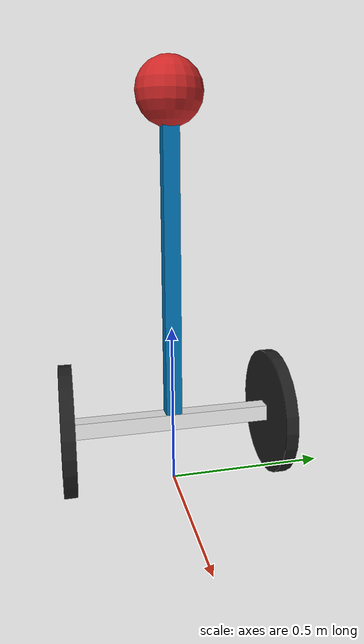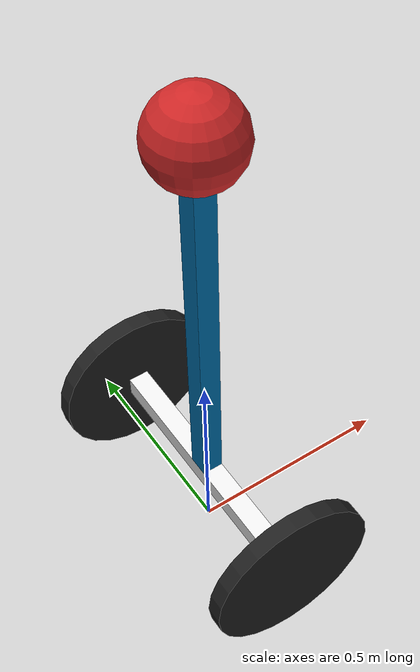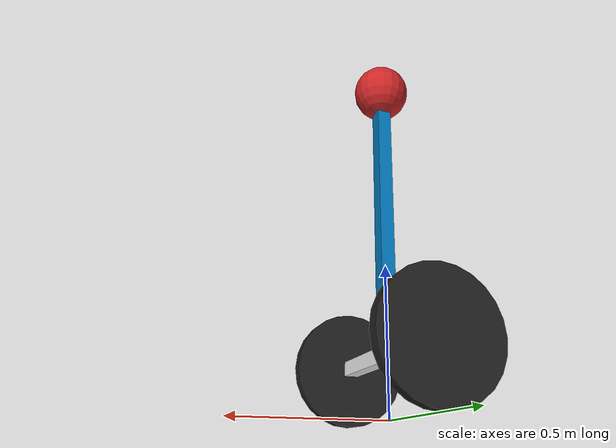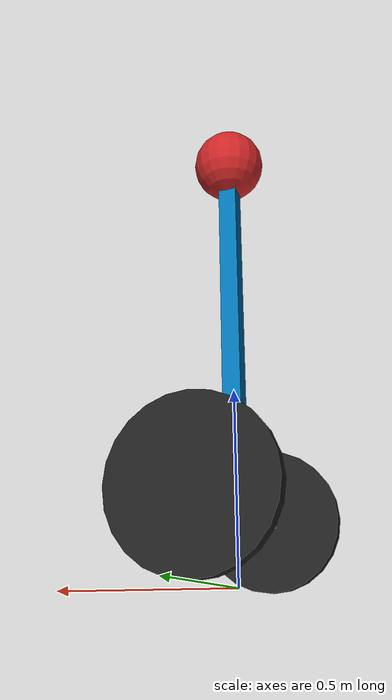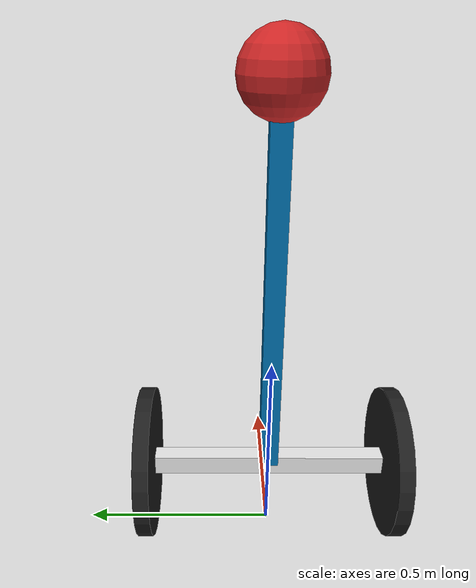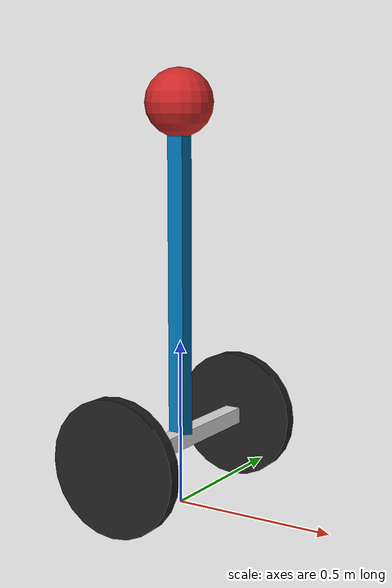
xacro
<?xml version="1.0"?>
<robot xmlns:xacro="http://www.ros.org/wiki/xacro" name="cart_pole">

<!-- pi -->
<xacro:include filename="$(find cart_pole)/urdf/robot.gazebo" />

<!-- Launch arguments which will be passed to xacro file when /start_simulation service is called -->
<xacro:arg name="mc" default="1.5"/>
<xacro:arg name="mp" default="0.5"/>
<xacro:arg name="l"  default="1.0"/>
<xacro:arg name="k1" default="-0.8935"/>
<xacro:arg name="k2" default="16.7650"/>
<xacro:arg name="k3"  default="-1.7750"/>
<xacro:arg name="k4" default="5.0945"/>

<xacro:property name="mc" value="${$(arg mc) - 0.5}" />
<xacro:property name="mp" value="${$(arg mp)}" />
<xacro:property name="l" value="${$(arg l)}" />

<!-- dummy_link -->
<link name="dummy_link" />

<!-- dummy_joint -->
<joint name="dummy_joint" type="fixed">
    <parent link="dummy_link" />
    <child link="base" />
</joint>

<!-- base link -->
<!-- cart or mass m_c in dynamic model, particle mass with no inertia -->
<link name="base">
    <visual>
        <origin xyz="0 0 0.2" />
        <geometry>
            <box size="0.05 0.618 0.05" />
        </geometry>
    </visual>
    <collision>
        <origin xyz="0 0 0.2" />
        <geometry>
            <box size="0.05 0.618 0.05" />
        </geometry>
    </collision>
    <inertial>
        <origin xyz="0 0 0.2" />
        <mass value="${mc}" />
        <inertia ixx="0.0" ixy="0.0" ixz="0.0" iyy="0.0" iyz="0.0" izz="0.0" />
    </inertial>
</link>

<!-- right_wheel -->
<!-- has I_w = izz inertia -->
<link name="right_wheel">
    <visual>
        <geometry>
            <cylinder radius="0.2" length="0.04" />
        </geometry>
    </visual>
    <collision>
        <geometry>
            <cylinder radius="0.2" length="0.04" />
        </geometry>
    </collision>
    <inertial>
        <mass value="0.25" />
        <inertia ixx="0.0006333" ixy="0.0" ixz="0.0" iyy="0.0006333" iyz="0.0" izz="0.00125" />
    </inertial>
</link>

<!-- right_wheel_joint -->
<!-- has d_1 damping ratio -->
<joint name="right_wheel_joint" type="continuous">
    <parent link="base" />
    <child link="right_wheel" />
    <origin xyz="0.0 -0.329 0.2" rpy="${pi/2} 0.0 0.0" />
    <axis xyz="0 0 1" />
    <limit effort="10.0" velocity="100.0" />
    <dynamics damping="0.01" />
</joint>

<!-- left_wheel -->
<!-- has I_w = izz inertia -->
<link name="left_wheel">
    <visual>
        <geometry>
            <cylinder radius="0.2" length="0.04" />
        </geometry>
    </visual>
    <collision>
        <geometry>
            <cylinder radius="0.2" length="0.04" />
        </geometry>
    </collision>
    <inertial>
        <mass value="0.25" />
        <inertia ixx="0.0006333" ixy="0.0" ixz="0.0" iyy="0.0006333" iyz="0.0" izz="0.00125" />
    </inertial>
</link>

<!-- left_wheel_joint -->
<!-- has d_1 damping ratio -->
<joint name="left_wheel_joint" type="continuous">
    <parent link="base" />
    <child link="left_wheel" />
    <origin xyz="0.0 0.329 0.2" rpy="${pi/2} 0.0 0.0" />
    <axis xyz="0 0 1" />
    <limit effort="10.0" velocity="100.0" />
    <dynamics damping="0.01" />
</joint>

<!-- pendulum link -->
<!-- this link is mass less just like the configuration figure -->
<link name="pendulum">
    <visual>
        <geometry>
            <box size="0.05 ${l} 0.05" />
        </geometry>
    </visual>
    <collision>
        <geometry>
            <box size="0.05 ${l} 0.05" />
        </geometry>
    </collision>
</link>

<!-- pendulum_joint -->
<joint name="pendulum_joint" type="fixed">
    <parent link="base" />
    <child link="pendulum" />
    <origin xyz="0.0 0.0 ${l/2 + 0.2}" rpy="${pi/2} 0.0 0.0" />
</joint>

<!-- pole link -->
<!-- think of this as mass M_p, a particle mass with no inertia -->
<link name="pole">
    <visual>
        <geometry>
            <sphere radius="0.10" />
        </geometry>
    </visual>
    <collision>
        <geometry>
            <sphere radius="0.10" />
        </geometry>
    </collision>
    <inertial>
        <mass value="${mp}" />
        <inertia ixx="0.0" ixy="0.0" ixz="0.0" iyy="0.0" iyz="0.0" izz="0.0" />
    </inertial>
</link>

<!-- pole joint -->
<joint name="pole_joint" type="fixed">
    <parent link="base" />
    <child link="pole" />
    <origin xyz="0.0 0.0 ${l + 0.2}" />
</joint>

<!-- LQR controller -->
<!-- gains will be passed to controller via launch arguments -->
<gazebo>
  <plugin name="lqr_controller" filename="liblqr_controller.so">
    <k1>${$(arg k1)}</k1>
    <k2>${$(arg k2)}</k2>
    <k3>${$(arg k3)}</k3>
    <k4>${$(arg k4)}</k4>
  </plugin>
</gazebo>

</robot>
